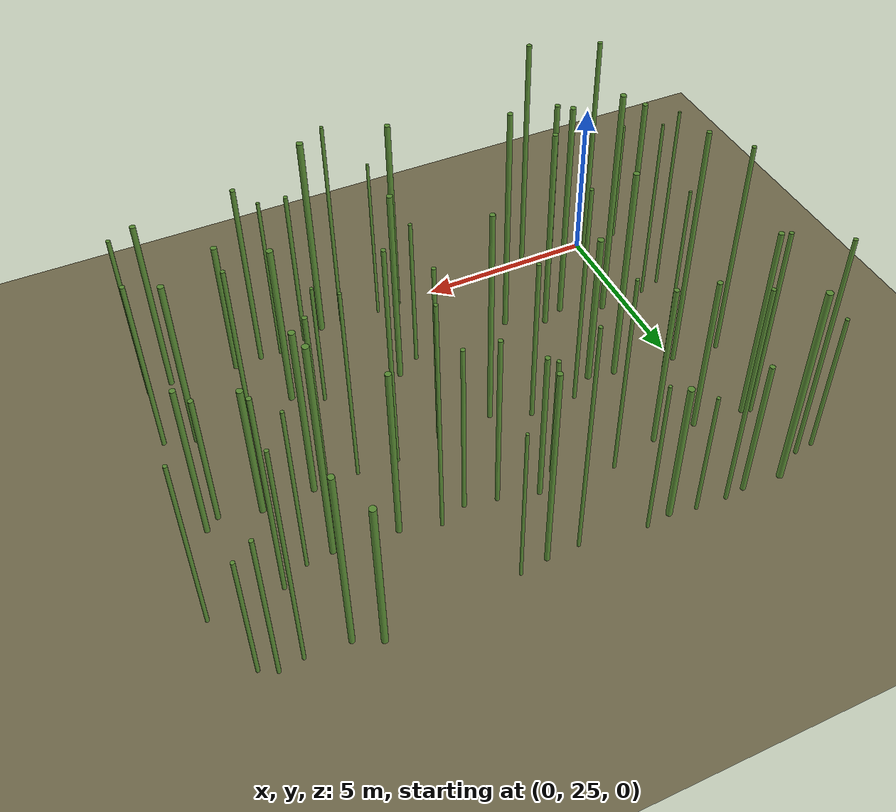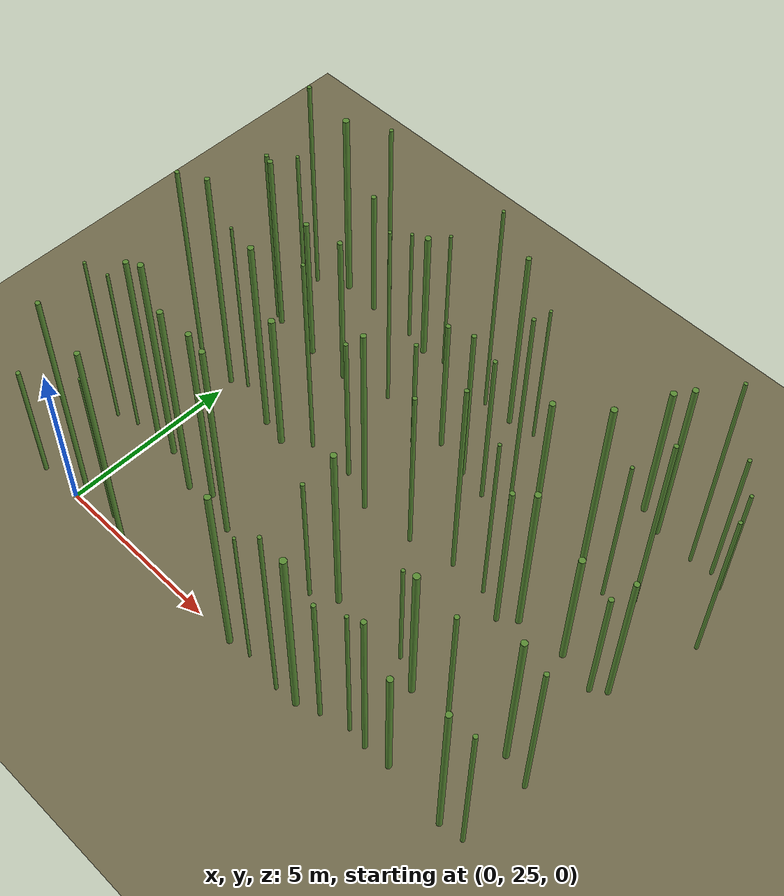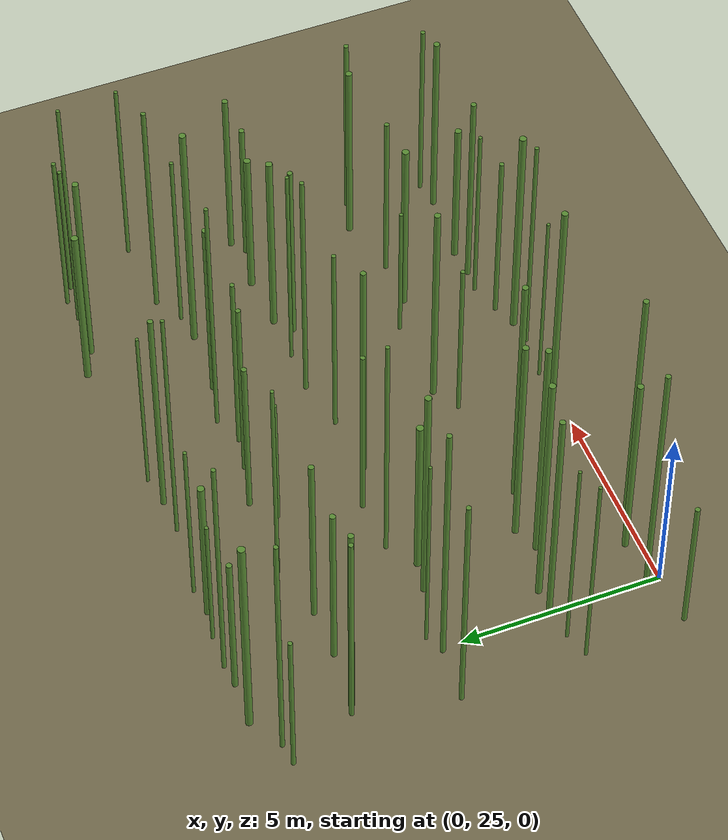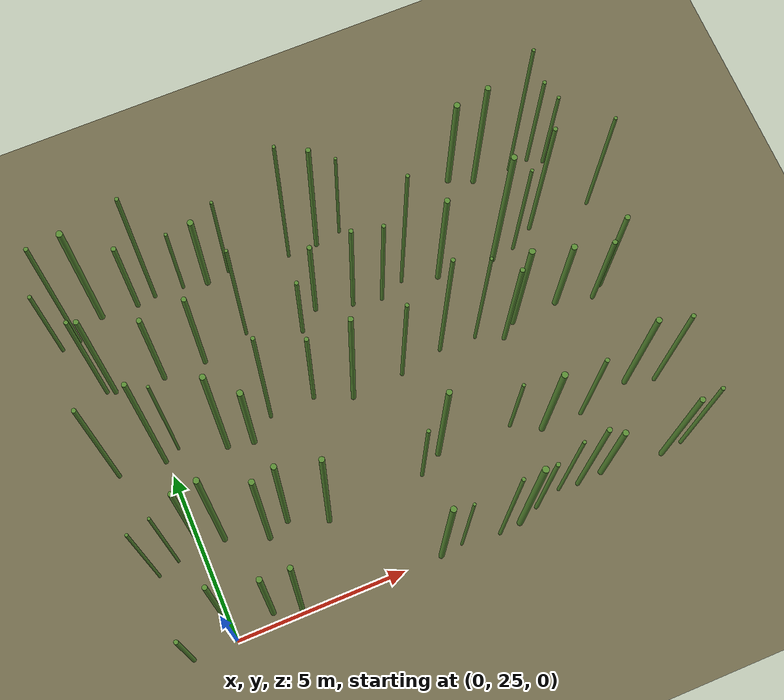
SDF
<sdf version="1.9">
 <world name="bamboo_field">
  <model name="ground_plane">
   <static>true</static>
   <link name="link">
    <collision name="collision">
     <geometry><plane><normal>0 0 1</normal><size>80.0 80.0</size></plane></geometry>
    </collision>
    <visual name="visual">
     <geometry><plane><normal>0 0 1</normal><size>80.0 80.0</size></plane></geometry>
     <material><diffuse>0.45 0.42 0.30 1</diffuse></material>
    </visual>
   </link>
  </model>
  <model name="bamboo_1713">
   <static>true</static>
   <pose>-1.2812449019505685 24.97264221818186 2.044766950367843 0 0 0</pose>
   <link name="link">
    <collision name="collision">
     <geometry>
      <cylinder><radius>0.06112649545101061</radius><length>4.089533900735686</length></cylinder>
     </geometry>
    </collision>
    <visual name="visual">
     <geometry>
      <cylinder><radius>0.06112649545101061</radius><length>4.089533900735686</length></cylinder>
     </geometry>
     <material><diffuse>0.35 0.55 0.20 1</diffuse><specular>0.1 0.1 0.1 1</specular></material>
    </visual>
   </link>
  </model>
  <model name="bamboo_1715">
   <static>true</static>
   <pose>-0.010320963659164767 25.35210948519644 3.7084872989911357 0 0 0</pose>
   <link name="link">
    <collision name="collision">
     <geometry>
      <cylinder><radius>0.0657019786310038</radius><length>7.416974597982271</length></cylinder>
     </geometry>
    </collision>
    <visual name="visual">
     <geometry>
      <cylinder><radius>0.0657019786310038</radius><length>7.416974597982271</length></cylinder>
     </geometry>
     <material><diffuse>0.35 0.55 0.20 1</diffuse><specular>0.1 0.1 0.1 1</specular></material>
    </visual>
   </link>
  </model>
  <model name="bamboo_1716">
   <static>true</static>
   <pose>1.1915557640228798 25.337657897220055 2.873891268294852 0 0 0</pose>
   <link name="link">
    <collision name="collision">
     <geometry>
      <cylinder><radius>0.07803595227579707</radius><length>5.747782536589704</length></cylinder>
     </geometry>
    </collision>
    <visual name="visual">
     <geometry>
      <cylinder><radius>0.07803595227579707</radius><length>5.747782536589704</length></cylinder>
     </geometry>
     <material><diffuse>0.35 0.55 0.20 1</diffuse><specular>0.1 0.1 0.1 1</specular></material>
    </visual>
   </link>
  </model>
  <model name="bamboo_1717">
   <static>true</static>
   <pose>1.9542342077964152 24.983717197773377 3.8194928196260394 0 0 0</pose>
   <link name="link">
    <collision name="collision">
     <geometry>
      <cylinder><radius>0.07023112840900966</radius><length>7.638985639252079</length></cylinder>
     </geometry>
    </collision>
    <visual name="visual">
     <geometry>
      <cylinder><radius>0.07023112840900966</radius><length>7.638985639252079</length></cylinder>
     </geometry>
     <material><diffuse>0.35 0.55 0.20 1</diffuse><specular>0.1 0.1 0.1 1</specular></material>
    </visual>
   </link>
  </model>
  <model name="bamboo_1719">
   <static>true</static>
   <pose>6.104229720517562 25.022968025916473 3.175828329038095 0 0 0</pose>
   <link name="link">
    <collision name="collision">
     <geometry>
      <cylinder><radius>0.08134874882573043</radius><length>6.35165665807619</length></cylinder>
     </geometry>
    </collision>
    <visual name="visual">
     <geometry>
      <cylinder><radius>0.08134874882573043</radius><length>6.35165665807619</length></cylinder>
     </geometry>
     <material><diffuse>0.35 0.55 0.20 1</diffuse><specular>0.1 0.1 0.1 1</specular></material>
    </visual>
   </link>
  </model>
  <model name="bamboo_1720">
   <static>true</static>
   <pose>6.7579610819173 25.10390975983723 2.681191955799502 0 0 0</pose>
   <link name="link">
    <collision name="collision">
     <geometry>
      <cylinder><radius>0.04062836123367798</radius><length>5.362383911599004</length></cylinder>
     </geometry>
    </collision>
    <visual name="visual">
     <geometry>
      <cylinder><radius>0.04062836123367798</radius><length>5.362383911599004</length></cylinder>
     </geometry>
     <material><diffuse>0.35 0.55 0.20 1</diffuse><specular>0.1 0.1 0.1 1</specular></material>
    </visual>
   </link>
  </model>
  <model name="bamboo_1721">
   <static>true</static>
   <pose>7.871373848366045 24.971826433078874 3.3954507286848634 0 0 0</pose>
   <link name="link">
    <collision name="collision">
     <geometry>
      <cylinder><radius>0.05053186972895278</radius><length>6.790901457369727</length></cylinder>
     </geometry>
    </collision>
    <visual name="visual">
     <geometry>
      <cylinder><radius>0.05053186972895278</radius><length>6.790901457369727</length></cylinder>
     </geometry>
     <material><diffuse>0.35 0.55 0.20 1</diffuse><specular>0.1 0.1 0.1 1</specular></material>
    </visual>
   </link>
  </model>
  <model name="bamboo_1722">
   <static>true</static>
   <pose>8.506118301652423 25.034551050024465 3.262768126823582 0 0 0</pose>
   <link name="link">
    <collision name="collision">
     <geometry>
      <cylinder><radius>0.08838618043013234</radius><length>6.525536253647164</length></cylinder>
     </geometry>
    </collision>
    <visual name="visual">
     <geometry>
      <cylinder><radius>0.08838618043013234</radius><length>6.525536253647164</length></cylinder>
     </geometry>
     <material><diffuse>0.35 0.55 0.20 1</diffuse><specular>0.1 0.1 0.1 1</specular></material>
    </visual>
   </link>
  </model>
  <model name="bamboo_1723">
   <static>true</static>
   <pose>9.11694742718933 25.26499257462695 2.583646085126065 0 0 0</pose>
   <link name="link">
    <collision name="collision">
     <geometry>
      <cylinder><radius>0.058459572756302626</radius><length>5.16729217025213</length></cylinder>
     </geometry>
    </collision>
    <visual name="visual">
     <geometry>
      <cylinder><radius>0.058459572756302626</radius><length>5.16729217025213</length></cylinder>
     </geometry>
     <material><diffuse>0.35 0.55 0.20 1</diffuse><specular>0.1 0.1 0.1 1</specular></material>
    </visual>
   </link>
  </model>
  <model name="bamboo_1724">
   <static>true</static>
   <pose>9.910108148380242 25.489919703540146 2.7032527560724677 0 0 0</pose>
   <link name="link">
    <collision name="collision">
     <geometry>
      <cylinder><radius>0.04833671526024682</radius><length>5.4065055121449355</length></cylinder>
     </geometry>
    </collision>
    <visual name="visual">
     <geometry>
      <cylinder><radius>0.04833671526024682</radius><length>5.4065055121449355</length></cylinder>
     </geometry>
     <material><diffuse>0.35 0.55 0.20 1</diffuse><specular>0.1 0.1 0.1 1</specular></material>
    </visual>
   </link>
  </model>
  <model name="bamboo_1725">
   <static>true</static>
   <pose>10.48170292662354 25.437665012124544 2.981513753379587 0 0 0</pose>
   <link name="link">
    <collision name="collision">
     <geometry>
      <cylinder><radius>0.06782197436096221</radius><length>5.963027506759174</length></cylinder>
     </geometry>
    </collision>
    <visual name="visual">
     <geometry>
      <cylinder><radius>0.06782197436096221</radius><length>5.963027506759174</length></cylinder>
     </geometry>
     <material><diffuse>0.35 0.55 0.20 1</diffuse><specular>0.1 0.1 0.1 1</specular></material>
    </visual>
   </link>
  </model>
  <model name="bamboo_1726">
   <static>true</static>
   <pose>11.222892654083285 25.487333249699894 2.1939596443735017 0 0 0</pose>
   <link name="link">
    <collision name="collision">
     <geometry>
      <cylinder><radius>0.0824834095401667</radius><length>4.387919288747003</length></cylinder>
     </geometry>
    </collision>
    <visual name="visual">
     <geometry>
      <cylinder><radius>0.0824834095401667</radius><length>4.387919288747003</length></cylinder>
     </geometry>
     <material><diffuse>0.35 0.55 0.20 1</diffuse><specular>0.1 0.1 0.1 1</specular></material>
    </visual>
   </link>
  </model>
  <model name="bamboo_1727">
   <static>true</static>
   <pose>13.047985231428903 25.31873825958789 2.8022330187271587 0 0 0</pose>
   <link name="link">
    <collision name="collision">
     <geometry>
      <cylinder><radius>0.07672303556609769</radius><length>5.604466037454317</length></cylinder>
     </geometry>
    </collision>
    <visual name="visual">
     <geometry>
      <cylinder><radius>0.07672303556609769</radius><length>5.604466037454317</length></cylinder>
     </geometry>
     <material><diffuse>0.35 0.55 0.20 1</diffuse><specular>0.1 0.1 0.1 1</specular></material>
    </visual>
   </link>
  </model>
  <model name="bamboo_1728">
   <static>true</static>
   <pose>13.703243043412806 25.412172121978735 2.7263493631821225 0 0 0</pose>
   <link name="link">
    <collision name="collision">
     <geometry>
      <cylinder><radius>0.05597017488274711</radius><length>5.452698726364245</length></cylinder>
     </geometry>
    </collision>
    <visual name="visual">
     <geometry>
      <cylinder><radius>0.05597017488274711</radius><length>5.452698726364245</length></cylinder>
     </geometry>
     <material><diffuse>0.35 0.55 0.20 1</diffuse><specular>0.1 0.1 0.1 1</specular></material>
    </visual>
   </link>
  </model>
  <model name="bamboo_1790">
   <static>true</static>
   <pose>-1.3489521709063035 27.48467832168053 3.0567947635097257 0 0 0</pose>
   <link name="link">
    <collision name="collision">
     <geometry>
      <cylinder><radius>0.04240155414926799</radius><length>6.113589527019451</length></cylinder>
     </geometry>
    </collision>
    <visual name="visual">
     <geometry>
      <cylinder><radius>0.04240155414926799</radius><length>6.113589527019451</length></cylinder>
     </geometry>
     <material><diffuse>0.35 0.55 0.20 1</diffuse><specular>0.1 0.1 0.1 1</specular></material>
    </visual>
   </link>
  </model>
  <model name="bamboo_1791">
   <static>true</static>
   <pose>-0.7227644338997237 27.67919140579215 3.008423117892159 0 0 0</pose>
   <link name="link">
    <collision name="collision">
     <geometry>
      <cylinder><radius>0.04160420088462094</radius><length>6.016846235784318</length></cylinder>
     </geometry>
    </collision>
    <visual name="visual">
     <geometry>
      <cylinder><radius>0.04160420088462094</radius><length>6.016846235784318</length></cylinder>
     </geometry>
     <material><diffuse>0.35 0.55 0.20 1</diffuse><specular>0.1 0.1 0.1 1</specular></material>
    </visual>
   </link>
  </model>
  <model name="bamboo_1792">
   <static>true</static>
   <pose>0.010959346975259132 27.808054429115245 3.4688676159911243 0 0 0</pose>
   <link name="link">
    <collision name="collision">
     <geometry>
      <cylinder><radius>0.07171869220849479</radius><length>6.9377352319822485</length></cylinder>
     </geometry>
    </collision>
    <visual name="visual">
     <geometry>
      <cylinder><radius>0.07171869220849479</radius><length>6.9377352319822485</length></cylinder>
     </geometry>
     <material><diffuse>0.35 0.55 0.20 1</diffuse><specular>0.1 0.1 0.1 1</specular></material>
    </visual>
   </link>
  </model>
  <model name="bamboo_1793">
   <static>true</static>
   <pose>0.6888910459992598 27.771842970053065 3.6925986834091833 0 0 0</pose>
   <link name="link">
    <collision name="collision">
     <geometry>
      <cylinder><radius>0.07992954884227378</radius><length>7.385197366818367</length></cylinder>
     </geometry>
    </collision>
    <visual name="visual">
     <geometry>
      <cylinder><radius>0.07992954884227378</radius><length>7.385197366818367</length></cylinder>
     </geometry>
     <material><diffuse>0.35 0.55 0.20 1</diffuse><specular>0.1 0.1 0.1 1</specular></material>
    </visual>
   </link>
  </model>
  <model name="bamboo_1794">
   <static>true</static>
   <pose>1.8731551704132192 27.319900591756273 3.5342305702560117 0 0 0</pose>
   <link name="link">
    <collision name="collision">
     <geometry>
      <cylinder><radius>0.07759536745886636</radius><length>7.0684611405120235</length></cylinder>
     </geometry>
    </collision>
    <visual name="visual">
     <geometry>
      <cylinder><radius>0.07759536745886636</radius><length>7.0684611405120235</length></cylinder>
     </geometry>
     <material><diffuse>0.35 0.55 0.20 1</diffuse><specular>0.1 0.1 0.1 1</specular></material>
    </visual>
   </link>
  </model>
  <model name="bamboo_1795">
   <static>true</static>
   <pose>2.503125946035982 27.57958305767207 3.300887395894966 0 0 0</pose>
   <link name="link">
    <collision name="collision">
     <geometry>
      <cylinder><radius>0.07694682946510811</radius><length>6.601774791789932</length></cylinder>
     </geometry>
    </collision>
    <visual name="visual">
     <geometry>
      <cylinder><radius>0.07694682946510811</radius><length>6.601774791789932</length></cylinder>
     </geometry>
     <material><diffuse>0.35 0.55 0.20 1</diffuse><specular>0.1 0.1 0.1 1</specular></material>
    </visual>
   </link>
  </model>
  <model name="bamboo_1796">
   <static>true</static>
   <pose>3.5906098026918256 27.141133623319924 3.640417053528185 0 0 0</pose>
   <link name="link">
    <collision name="collision">
     <geometry>
      <cylinder><radius>0.07462930833528139</radius><length>7.28083410705637</length></cylinder>
     </geometry>
    </collision>
    <visual name="visual">
     <geometry>
      <cylinder><radius>0.07462930833528139</radius><length>7.28083410705637</length></cylinder>
     </geometry>
     <material><diffuse>0.35 0.55 0.20 1</diffuse><specular>0.1 0.1 0.1 1</specular></material>
    </visual>
   </link>
  </model>
  <model name="bamboo_1797">
   <static>true</static>
   <pose>6.511384770044317 27.354728648498927 2.4457799730357 0 0 0</pose>
   <link name="link">
    <collision name="collision">
     <geometry><cylinder><radius>0.05294264750762828</radius><length>4.8915599460714</length></cylinder></geometry>
    </collision>
    <visual name="visual">
     <geometry><cylinder><radius>0.05294264750762828</radius><length>4.8915599460714</length></cylinder></geometry>
     <material><diffuse>0.35 0.55 0.20 1</diffuse><specular>0.1 0.1 0.1 1</specular></material>
    </visual>
   </link>
  </model>
  <model name="bamboo_1798">
   <static>true</static>
   <pose>7.170560997116723 27.742313371493033 3.148876829823204 0 0 0</pose>
   <link name="link">
    <collision name="collision">
     <geometry>
      <cylinder><radius>0.07849639140871344</radius><length>6.297753659646408</length></cylinder>
     </geometry>
    </collision>
    <visual name="visual">
     <geometry>
      <cylinder><radius>0.07849639140871344</radius><length>6.297753659646408</length></cylinder>
     </geometry>
     <material><diffuse>0.35 0.55 0.20 1</diffuse><specular>0.1 0.1 0.1 1</specular></material>
    </visual>
   </link>
  </model>
  <model name="bamboo_1799">
   <static>true</static>
   <pose>9.399748356970791 27.71738397563248 2.0524489810082622 0 0 0</pose>
   <link name="link">
    <collision name="collision">
     <geometry>
      <cylinder><radius>0.04907933604005593</radius><length>4.1048979620165245</length></cylinder>
     </geometry>
    </collision>
    <visual name="visual">
     <geometry>
      <cylinder><radius>0.04907933604005593</radius><length>4.1048979620165245</length></cylinder>
     </geometry>
     <material><diffuse>0.35 0.55 0.20 1</diffuse><specular>0.1 0.1 0.1 1</specular></material>
    </visual>
   </link>
  </model>
  <model name="bamboo_1800">
   <static>true</static>
   <pose>10.210923990488512 27.287167851970334 2.6549220959925064 0 0 0</pose>
   <link name="link">
    <collision name="collision">
     <geometry>
      <cylinder><radius>0.08773302974897133</radius><length>5.309844191985013</length></cylinder>
     </geometry>
    </collision>
    <visual name="visual">
     <geometry>
      <cylinder><radius>0.08773302974897133</radius><length>5.309844191985013</length></cylinder>
     </geometry>
     <material><diffuse>0.35 0.55 0.20 1</diffuse><specular>0.1 0.1 0.1 1</specular></material>
    </visual>
   </link>
  </model>
  <model name="bamboo_1801">
   <static>true</static>
   <pose>11.429123104056202 27.27816021983343 2.5421558802273694 0 0 0</pose>
   <link name="link">
    <collision name="collision">
     <geometry>
      <cylinder><radius>0.06121418192647532</radius><length>5.084311760454739</length></cylinder>
     </geometry>
    </collision>
    <visual name="visual">
     <geometry>
      <cylinder><radius>0.06121418192647532</radius><length>5.084311760454739</length></cylinder>
     </geometry>
     <material><diffuse>0.35 0.55 0.20 1</diffuse><specular>0.1 0.1 0.1 1</specular></material>
    </visual>
   </link>
  </model>
  <model name="bamboo_1802">
   <static>true</static>
   <pose>12.986168000182229 27.646854818488013 2.750227883836983 0 0 0</pose>
   <link name="link">
    <collision name="collision">
     <geometry>
      <cylinder><radius>0.08170786214918407</radius><length>5.500455767673966</length></cylinder>
     </geometry>
    </collision>
    <visual name="visual">
     <geometry>
      <cylinder><radius>0.08170786214918407</radius><length>5.500455767673966</length></cylinder>
     </geometry>
     <material><diffuse>0.35 0.55 0.20 1</diffuse><specular>0.1 0.1 0.1 1</specular></material>
    </visual>
   </link>
  </model>
  <model name="bamboo_1803">
   <static>true</static>
   <pose>13.815308969666152 27.392448575038713 2.798356401900019 0 0 0</pose>
   <link name="link">
    <collision name="collision">
     <geometry>
      <cylinder><radius>0.0623406193548988</radius><length>5.596712803800038</length></cylinder>
     </geometry>
    </collision>
    <visual name="visual">
     <geometry>
      <cylinder><radius>0.0623406193548988</radius><length>5.596712803800038</length></cylinder>
     </geometry>
     <material><diffuse>0.35 0.55 0.20 1</diffuse><specular>0.1 0.1 0.1 1</specular></material>
    </visual>
   </link>
  </model>
  <model name="bamboo_1852">
   <static>true</static>
   <pose>-1.4236925680769439 30.601678442894606 3.488619551656617 0 0 0</pose>
   <link name="link">
    <collision name="collision">
     <geometry>
      <cylinder><radius>0.05968725499447025</radius><length>6.977239103313234</length></cylinder>
     </geometry>
    </collision>
    <visual name="visual">
     <geometry>
      <cylinder><radius>0.05968725499447025</radius><length>6.977239103313234</length></cylinder>
     </geometry>
     <material><diffuse>0.35 0.55 0.20 1</diffuse><specular>0.1 0.1 0.1 1</specular></material>
    </visual>
   </link>
  </model>
  <model name="bamboo_1853">
   <static>true</static>
   <pose>-0.056700002124779214 30.48966584134691 3.8803940027757395 0 0 0</pose>
   <link name="link">
    <collision name="collision">
     <geometry>
      <cylinder><radius>0.06613826954263308</radius><length>7.760788005551479</length></cylinder>
     </geometry>
    </collision>
    <visual name="visual">
     <geometry>
      <cylinder><radius>0.06613826954263308</radius><length>7.760788005551479</length></cylinder>
     </geometry>
     <material><diffuse>0.35 0.55 0.20 1</diffuse><specular>0.1 0.1 0.1 1</specular></material>
    </visual>
   </link>
  </model>
  <model name="bamboo_1854">
   <static>true</static>
   <pose>0.4020409329805253 30.712147827550723 3.133859994720484 0 0 0</pose>
   <link name="link">
    <collision name="collision">
     <geometry>
      <cylinder><radius>0.04128202856184524</radius><length>6.267719989440968</length></cylinder>
     </geometry>
    </collision>
    <visual name="visual">
     <geometry>
      <cylinder><radius>0.04128202856184524</radius><length>6.267719989440968</length></cylinder>
     </geometry>
     <material><diffuse>0.35 0.55 0.20 1</diffuse><specular>0.1 0.1 0.1 1</specular></material>
    </visual>
   </link>
  </model>
  <model name="bamboo_1855">
   <static>true</static>
   <pose>1.719262575260203 30.227442954739423 3.4581147351357813 0 0 0</pose>
   <link name="link">
    <collision name="collision">
     <geometry>
      <cylinder><radius>0.08009476230605489</radius><length>6.9162294702715625</length></cylinder>
     </geometry>
    </collision>
    <visual name="visual">
     <geometry>
      <cylinder><radius>0.08009476230605489</radius><length>6.9162294702715625</length></cylinder>
     </geometry>
     <material><diffuse>0.35 0.55 0.20 1</diffuse><specular>0.1 0.1 0.1 1</specular></material>
    </visual>
   </link>
  </model>
  <model name="bamboo_1856">
   <static>true</static>
   <pose>2.464213782437099 30.08344237589001 2.4974021654819323 0 0 0</pose>
   <link name="link">
    <collision name="collision">
     <geometry>
      <cylinder><radius>0.08867897814720443</radius><length>4.994804330963865</length></cylinder>
     </geometry>
    </collision>
    <visual name="visual">
     <geometry>
      <cylinder><radius>0.08867897814720443</radius><length>4.994804330963865</length></cylinder>
     </geometry>
     <material><diffuse>0.35 0.55 0.20 1</diffuse><specular>0.1 0.1 0.1 1</specular></material>
    </visual>
   </link>
  </model>
  <model name="bamboo_1857">
   <static>true</static>
   <pose>3.1818574317319173 30.58954922995089 3.587282049068691 0 0 0</pose>
   <link name="link">
    <collision name="collision">
     <geometry>
      <cylinder><radius>0.053158684882749295</radius><length>7.174564098137382</length></cylinder>
     </geometry>
    </collision>
    <visual name="visual">
     <geometry>
      <cylinder><radius>0.053158684882749295</radius><length>7.174564098137382</length></cylinder>
     </geometry>
     <material><diffuse>0.35 0.55 0.20 1</diffuse><specular>0.1 0.1 0.1 1</specular></material>
    </visual>
   </link>
  </model>
  <model name="bamboo_1858">
   <static>true</static>
   <pose>4.5250304221793565 30.641286888968988 2.697078284337643 0 0 0</pose>
   <link name="link">
    <collision name="collision">
     <geometry>
      <cylinder><radius>0.06006604364265469</radius><length>5.394156568675286</length></cylinder>
     </geometry>
    </collision>
    <visual name="visual">
     <geometry>
      <cylinder><radius>0.06006604364265469</radius><length>5.394156568675286</length></cylinder>
     </geometry>
     <material><diffuse>0.35 0.55 0.20 1</diffuse><specular>0.1 0.1 0.1 1</specular></material>
    </visual>
   </link>
  </model>
  <model name="bamboo_1859">
   <static>true</static>
   <pose>5.582225304000331 30.20928264338742 3.4797186524444172 0 0 0</pose>
   <link name="link">
    <collision name="collision">
     <geometry>
      <cylinder><radius>0.07082013634526534</radius><length>6.9594373048888345</length></cylinder>
     </geometry>
    </collision>
    <visual name="visual">
     <geometry>
      <cylinder><radius>0.07082013634526534</radius><length>6.9594373048888345</length></cylinder>
     </geometry>
     <material><diffuse>0.35 0.55 0.20 1</diffuse><specular>0.1 0.1 0.1 1</specular></material>
    </visual>
   </link>
  </model>
  <model name="bamboo_1860">
   <static>true</static>
   <pose>7.1474443621859205 30.317870465853993 2.994385386101529 0 0 0</pose>
   <link name="link">
    <collision name="collision">
     <geometry>
      <cylinder><radius>0.05564621725000431</radius><length>5.988770772203058</length></cylinder>
     </geometry>
    </collision>
    <visual name="visual">
     <geometry>
      <cylinder><radius>0.05564621725000431</radius><length>5.988770772203058</length></cylinder>
     </geometry>
     <material><diffuse>0.35 0.55 0.20 1</diffuse><specular>0.1 0.1 0.1 1</specular></material>
    </visual>
   </link>
  </model>
  <model name="bamboo_1861">
   <static>true</static>
   <pose>8.450028178578785 30.578322589361463 3.611794999804632 0 0 0</pose>
   <link name="link">
    <collision name="collision">
     <geometry>
      <cylinder><radius>0.057529695234075647</radius><length>7.223589999609264</length></cylinder>
     </geometry>
    </collision>
    <visual name="visual">
     <geometry>
      <cylinder><radius>0.057529695234075647</radius><length>7.223589999609264</length></cylinder>
     </geometry>
     <material><diffuse>0.35 0.55 0.20 1</diffuse><specular>0.1 0.1 0.1 1</specular></material>
    </visual>
   </link>
  </model>
  <model name="bamboo_1862">
   <static>true</static>
   <pose>9.542886579286302 30.540142807612835 3.163693671085351 0 0 0</pose>
   <link name="link">
    <collision name="collision">
     <geometry>
      <cylinder><radius>0.04557403012729799</radius><length>6.327387342170702</length></cylinder>
     </geometry>
    </collision>
    <visual name="visual">
     <geometry>
      <cylinder><radius>0.04557403012729799</radius><length>6.327387342170702</length></cylinder>
     </geometry>
     <material><diffuse>0.35 0.55 0.20 1</diffuse><specular>0.1 0.1 0.1 1</specular></material>
    </visual>
   </link>
  </model>
  <model name="bamboo_1863">
   <static>true</static>
   <pose>10.317844728014261 30.189016725488564 2.795942464746102 0 0 0</pose>
   <link name="link">
    <collision name="collision">
     <geometry>
      <cylinder><radius>0.0669127179599956</radius><length>5.591884929492204</length></cylinder>
     </geometry>
    </collision>
    <visual name="visual">
     <geometry>
      <cylinder><radius>0.0669127179599956</radius><length>5.591884929492204</length></cylinder>
     </geometry>
     <material><diffuse>0.35 0.55 0.20 1</diffuse><specular>0.1 0.1 0.1 1</specular></material>
    </visual>
   </link>
  </model>
  <model name="bamboo_1864">
   <static>true</static>
   <pose>10.75147538620531 30.55110466720041 2.809274179521334 0 0 0</pose>
   <link name="link">
    <collision name="collision">
     <geometry>
      <cylinder><radius>0.08384665253132215</radius><length>5.618548359042668</length></cylinder>
     </geometry>
    </collision>
    <visual name="visual">
     <geometry>
      <cylinder><radius>0.08384665253132215</radius><length>5.618548359042668</length></cylinder>
     </geometry>
     <material><diffuse>0.35 0.55 0.20 1</diffuse><specular>0.1 0.1 0.1 1</specular></material>
    </visual>
   </link>
  </model>
  <model name="bamboo_1865">
   <static>true</static>
   <pose>12.1494999262637 30.62018415702317 2.2072520530970317 0 0 0</pose>
   <link name="link">
    <collision name="collision">
     <geometry>
      <cylinder><radius>0.0860629162882418</radius><length>4.414504106194063</length></cylinder>
     </geometry>
    </collision>
    <visual name="visual">
     <geometry>
      <cylinder><radius>0.0860629162882418</radius><length>4.414504106194063</length></cylinder>
     </geometry>
     <material><diffuse>0.35 0.55 0.20 1</diffuse><specular>0.1 0.1 0.1 1</specular></material>
    </visual>
   </link>
  </model>
  <model name="bamboo_1866">
   <static>true</static>
   <pose>13.234835120295404 30.359758235231148 2.1644232023333947 0 0 0</pose>
   <link name="link">
    <collision name="collision">
     <geometry>
      <cylinder><radius>0.06850533909005868</radius><length>4.328846404666789</length></cylinder>
     </geometry>
    </collision>
    <visual name="visual">
     <geometry>
      <cylinder><radius>0.06850533909005868</radius><length>4.328846404666789</length></cylinder>
     </geometry>
     <material><diffuse>0.35 0.55 0.20 1</diffuse><specular>0.1 0.1 0.1 1</specular></material>
    </visual>
   </link>
  </model>
  <model name="bamboo_1867">
   <static>true</static>
   <pose>13.597682082643866 30.633256572263505 2.5475765917652726 0 0 0</pose>
   <link name="link">
    <collision name="collision">
     <geometry>
      <cylinder><radius>0.07337606638397175</radius><length>5.095153183530545</length></cylinder>
     </geometry>
    </collision>
    <visual name="visual">
     <geometry>
      <cylinder><radius>0.07337606638397175</radius><length>5.095153183530545</length></cylinder>
     </geometry>
     <material><diffuse>0.35 0.55 0.20 1</diffuse><specular>0.1 0.1 0.1 1</specular></material>
    </visual>
   </link>
  </model>
  <model name="bamboo_1925">
   <static>true</static>
   <pose>-0.9113957805042361 33.065283124342166 3.125423313057684 0 0 0</pose>
   <link name="link">
    <collision name="collision">
     <geometry>
      <cylinder><radius>0.05906066946812755</radius><length>6.250846626115368</length></cylinder>
     </geometry>
    </collision>
    <visual name="visual">
     <geometry>
      <cylinder><radius>0.05906066946812755</radius><length>6.250846626115368</length></cylinder>
     </geometry>
     <material><diffuse>0.35 0.55 0.20 1</diffuse><specular>0.1 0.1 0.1 1</specular></material>
    </visual>
   </link>
  </model>
  <model name="bamboo_1926">
   <static>true</static>
   <pose>-0.681386380513592 32.98140016128031 3.127277516507842 0 0 0</pose>
   <link name="link">
    <collision name="collision">
     <geometry>
      <cylinder><radius>0.07141432964622796</radius><length>6.254555033015684</length></cylinder>
     </geometry>
    </collision>
    <visual name="visual">
     <geometry>
      <cylinder><radius>0.07141432964622796</radius><length>6.254555033015684</length></cylinder>
     </geometry>
     <material><diffuse>0.35 0.55 0.20 1</diffuse><specular>0.1 0.1 0.1 1</specular></material>
    </visual>
   </link>
  </model>
  <model name="bamboo_1927">
   <static>true</static>
   <pose>0.7624257576821383 32.84196616684084 2.5649369014145433 0 0 0</pose>
   <link name="link">
    <collision name="collision">
     <geometry>
      <cylinder><radius>0.07223950765507473</radius><length>5.129873802829087</length></cylinder>
     </geometry>
    </collision>
    <visual name="visual">
     <geometry>
      <cylinder><radius>0.07223950765507473</radius><length>5.129873802829087</length></cylinder>
     </geometry>
     <material><diffuse>0.35 0.55 0.20 1</diffuse><specular>0.1 0.1 0.1 1</specular></material>
    </visual>
   </link>
  </model>
  <model name="bamboo_1928">
   <static>true</static>
   <pose>2.0220033923893723 32.845685317847646 2.6902925071139796 0 0 0</pose>
   <link name="link">
    <collision name="collision">
     <geometry>
      <cylinder><radius>0.07063042508439805</radius><length>5.380585014227959</length></cylinder>
     </geometry>
    </collision>
    <visual name="visual">
     <geometry>
      <cylinder><radius>0.07063042508439805</radius><length>5.380585014227959</length></cylinder>
     </geometry>
     <material><diffuse>0.35 0.55 0.20 1</diffuse><specular>0.1 0.1 0.1 1</specular></material>
    </visual>
   </link>
  </model>
  <model name="bamboo_1929">
   <static>true</static>
   <pose>3.434818848032072 33.20435532555725 3.2741864283528708 0 0 0</pose>
   <link name="link">
    <collision name="collision">
     <geometry>
      <cylinder><radius>0.04722037005680185</radius><length>6.5483728567057415</length></cylinder>
     </geometry>
    </collision>
    <visual name="visual">
     <geometry>
      <cylinder><radius>0.04722037005680185</radius><length>6.5483728567057415</length></cylinder>
     </geometry>
     <material><diffuse>0.35 0.55 0.20 1</diffuse><specular>0.1 0.1 0.1 1</specular></material>
    </visual>
   </link>
  </model>
  <model name="bamboo_1930">
   <static>true</static>
   <pose>4.976243163742862 32.627984963050984 2.041874251242527 0 0 0</pose>
   <link name="link">
    <collision name="collision">
     <geometry>
      <cylinder><radius>0.05840390478819816</radius><length>4.083748502485054</length></cylinder>
     </geometry>
    </collision>
    <visual name="visual">
     <geometry>
      <cylinder><radius>0.05840390478819816</radius><length>4.083748502485054</length></cylinder>
     </geometry>
     <material><diffuse>0.35 0.55 0.20 1</diffuse><specular>0.1 0.1 0.1 1</specular></material>
    </visual>
   </link>
  </model>
  <model name="bamboo_1931">
   <static>true</static>
   <pose>5.5779623207067255 33.11529106473646 2.453971221856614 0 0 0</pose>
   <link name="link">
    <collision name="collision">
     <geometry>
      <cylinder><radius>0.0670749262912883</radius><length>4.907942443713228</length></cylinder>
     </geometry>
    </collision>
    <visual name="visual">
     <geometry>
      <cylinder><radius>0.0670749262912883</radius><length>4.907942443713228</length></cylinder>
     </geometry>
     <material><diffuse>0.35 0.55 0.20 1</diffuse><specular>0.1 0.1 0.1 1</specular></material>
    </visual>
   </link>
  </model>
  <model name="bamboo_1932">
   <static>true</static>
   <pose>6.650991709286017 32.83792134296701 2.835451252171122 0 0 0</pose>
   <link name="link">
    <collision name="collision">
     <geometry>
      <cylinder><radius>0.06105703275040603</radius><length>5.670902504342244</length></cylinder>
     </geometry>
    </collision>
    <visual name="visual">
     <geometry>
      <cylinder><radius>0.06105703275040603</radius><length>5.670902504342244</length></cylinder>
     </geometry>
     <material><diffuse>0.35 0.55 0.20 1</diffuse><specular>0.1 0.1 0.1 1</specular></material>
    </visual>
   </link>
  </model>
  <model name="bamboo_1933">
   <static>true</static>
   <pose>7.49926974480562 32.6713368773556 2.7977661212252776 0 0 0</pose>
   <link name="link">
    <collision name="collision">
     <geometry>
      <cylinder><radius>0.056300549233471386</radius><length>5.595532242450555</length></cylinder>
     </geometry>
    </collision>
    <visual name="visual">
     <geometry>
      <cylinder><radius>0.056300549233471386</radius><length>5.595532242450555</length></cylinder>
     </geometry>
     <material><diffuse>0.35 0.55 0.20 1</diffuse><specular>0.1 0.1 0.1 1</specular></material>
    </visual>
   </link>
  </model>
  <model name="bamboo_1934">
   <static>true</static>
   <pose>8.24126625634669 32.96040969702206 3.7472122718290506 0 0 0</pose>
   <link name="link">
    <collision name="collision">
     <geometry>
      <cylinder><radius>0.04973009688705392</radius><length>7.494424543658101</length></cylinder>
     </geometry>
    </collision>
    <visual name="visual">
     <geometry>
      <cylinder><radius>0.04973009688705392</radius><length>7.494424543658101</length></cylinder>
     </geometry>
     <material><diffuse>0.35 0.55 0.20 1</diffuse><specular>0.1 0.1 0.1 1</specular></material>
    </visual>
   </link>
  </model>
  <model name="bamboo_1935">
   <static>true</static>
   <pose>9.290679837176278 32.67665589901849 2.816416179758558 0 0 0</pose>
   <link name="link">
    <collision name="collision">
     <geometry>
      <cylinder><radius>0.07819882899227676</radius><length>5.632832359517116</length></cylinder>
     </geometry>
    </collision>
    <visual name="visual">
     <geometry>
      <cylinder><radius>0.07819882899227676</radius><length>5.632832359517116</length></cylinder>
     </geometry>
     <material><diffuse>0.35 0.55 0.20 1</diffuse><specular>0.1 0.1 0.1 1</specular></material>
    </visual>
   </link>
  </model>
  <model name="bamboo_1936">
   <static>true</static>
   <pose>10.993824638902275 32.56281631714601 3.5491553227619965 0 0 0</pose>
   <link name="link">
    <collision name="collision">
     <geometry>
      <cylinder><radius>0.08164439475377383</radius><length>7.098310645523993</length></cylinder>
     </geometry>
    </collision>
    <visual name="visual">
     <geometry>
      <cylinder><radius>0.08164439475377383</radius><length>7.098310645523993</length></cylinder>
     </geometry>
     <material><diffuse>0.35 0.55 0.20 1</diffuse><specular>0.1 0.1 0.1 1</specular></material>
    </visual>
   </link>
  </model>
  <model name="bamboo_1937">
   <static>true</static>
   <pose>11.706429232006693 32.65341698444871 2.768581002013713 0 0 0</pose>
   <link name="link">
    <collision name="collision">
     <geometry>
      <cylinder><radius>0.04783596733944545</radius><length>5.537162004027426</length></cylinder>
     </geometry>
    </collision>
    <visual name="visual">
     <geometry>
      <cylinder><radius>0.04783596733944545</radius><length>5.537162004027426</length></cylinder>
     </geometry>
     <material><diffuse>0.35 0.55 0.20 1</diffuse><specular>0.1 0.1 0.1 1</specular></material>
    </visual>
   </link>
  </model>
  <model name="bamboo_1938">
   <static>true</static>
   <pose>12.412694755260285 33.049376510869855 3.333987074678254 0 0 0</pose>
   <link name="link">
    <collision name="collision">
     <geometry>
      <cylinder><radius>0.05929853356159959</radius><length>6.667974149356508</length></cylinder>
     </geometry>
    </collision>
    <visual name="visual">
     <geometry>
      <cylinder><radius>0.05929853356159959</radius><length>6.667974149356508</length></cylinder>
     </geometry>
     <material><diffuse>0.35 0.55 0.20 1</diffuse><specular>0.1 0.1 0.1 1</specular></material>
    </visual>
   </link>
  </model>
  <model name="bamboo_1939">
   <static>true</static>
   <pose>14.335472797823856 33.13481739048663 2.8225794630719823 0 0 0</pose>
   <link name="link">
    <collision name="collision">
     <geometry>
      <cylinder><radius>0.04989048747371258</radius><length>5.6451589261439645</length></cylinder>
     </geometry>
    </collision>
    <visual name="visual">
     <geometry>
      <cylinder><radius>0.04989048747371258</radius><length>5.6451589261439645</length></cylinder>
     </geometry>
     <material><diffuse>0.35 0.55 0.20 1</diffuse><specular>0.1 0.1 0.1 1</specular></material>
    </visual>
   </link>
  </model>
  <model name="bamboo_1990">
   <static>true</static>
   <pose>-1.673247249322031 34.76111439036476 2.286166718062497 0 0 0</pose>
   <link name="link">
    <collision name="collision">
     <geometry>
      <cylinder><radius>0.05381051827665702</radius><length>4.572333436124994</length></cylinder>
     </geometry>
    </collision>
    <visual name="visual">
     <geometry>
      <cylinder><radius>0.05381051827665702</radius><length>4.572333436124994</length></cylinder>
     </geometry>
     <material><diffuse>0.35 0.55 0.20 1</diffuse><specular>0.1 0.1 0.1 1</specular></material>
    </visual>
   </link>
  </model>
  <model name="bamboo_1991">
   <static>true</static>
   <pose>-1.1302667658629728 34.82208365082606 3.6496735605694726 0 0 0</pose>
   <link name="link">
    <collision name="collision">
     <geometry>
      <cylinder><radius>0.056360718889597344</radius><length>7.299347121138945</length></cylinder>
     </geometry>
    </collision>
    <visual name="visual">
     <geometry>
      <cylinder><radius>0.056360718889597344</radius><length>7.299347121138945</length></cylinder>
     </geometry>
     <material><diffuse>0.35 0.55 0.20 1</diffuse><specular>0.1 0.1 0.1 1</specular></material>
    </visual>
   </link>
  </model>
  <model name="bamboo_1992">
   <static>true</static>
   <pose>-0.28353380649270726 35.29669502272271 3.209542049217425 0 0 0</pose>
   <link name="link">
    <collision name="collision">
     <geometry>
      <cylinder><radius>0.08926422846100042</radius><length>6.41908409843485</length></cylinder>
     </geometry>
    </collision>
    <visual name="visual">
     <geometry>
      <cylinder><radius>0.08926422846100042</radius><length>6.41908409843485</length></cylinder>
     </geometry>
     <material><diffuse>0.35 0.55 0.20 1</diffuse><specular>0.1 0.1 0.1 1</specular></material>
    </visual>
   </link>
  </model>
  <model name="bamboo_1993">
   <static>true</static>
   <pose>0.812779649786565 35.234645930011425 2.240724836224609 0 0 0</pose>
   <link name="link">
    <collision name="collision">
     <geometry>
      <cylinder><radius>0.06987935938130371</radius><length>4.481449672449218</length></cylinder>
     </geometry>
    </collision>
    <visual name="visual">
     <geometry>
      <cylinder><radius>0.06987935938130371</radius><length>4.481449672449218</length></cylinder>
     </geometry>
     <material><diffuse>0.35 0.55 0.20 1</diffuse><specular>0.1 0.1 0.1 1</specular></material>
    </visual>
   </link>
  </model>
  <model name="bamboo_1994">
   <static>true</static>
   <pose>1.3734568679068053 35.29281008756258 3.5814186092616453 0 0 0</pose>
   <link name="link">
    <collision name="collision">
     <geometry>
      <cylinder><radius>0.05412281291493269</radius><length>7.162837218523291</length></cylinder>
     </geometry>
    </collision>
    <visual name="visual">
     <geometry>
      <cylinder><radius>0.05412281291493269</radius><length>7.162837218523291</length></cylinder>
     </geometry>
     <material><diffuse>0.35 0.55 0.20 1</diffuse><specular>0.1 0.1 0.1 1</specular></material>
    </visual>
   </link>
  </model>
  <model name="bamboo_1995">
   <static>true</static>
   <pose>2.2378730222289103 35.253461053864925 2.0505673889640157 0 0 0</pose>
   <link name="link">
    <collision name="collision">
     <geometry>
      <cylinder><radius>0.04720298003260172</radius><length>4.101134777928031</length></cylinder>
     </geometry>
    </collision>
    <visual name="visual">
     <geometry>
      <cylinder><radius>0.04720298003260172</radius><length>4.101134777928031</length></cylinder>
     </geometry>
     <material><diffuse>0.35 0.55 0.20 1</diffuse><specular>0.1 0.1 0.1 1</specular></material>
    </visual>
   </link>
  </model>
  <model name="bamboo_1996">
   <static>true</static>
   <pose>2.951335324049982 35.10848456696514 2.295229486326651 0 0 0</pose>
   <link name="link">
    <collision name="collision">
     <geometry>
      <cylinder><radius>0.08549033120013019</radius><length>4.590458972653302</length></cylinder>
     </geometry>
    </collision>
    <visual name="visual">
     <geometry>
      <cylinder><radius>0.08549033120013019</radius><length>4.590458972653302</length></cylinder>
     </geometry>
     <material><diffuse>0.35 0.55 0.20 1</diffuse><specular>0.1 0.1 0.1 1</specular></material>
    </visual>
   </link>
  </model>
  <model name="bamboo_1997">
   <static>true</static>
   <pose>3.6439150557579167 35.21420722541079 2.547104112147439 0 0 0</pose>
   <link name="link">
    <collision name="collision">
     <geometry>
      <cylinder><radius>0.045387243604996415</radius><length>5.094208224294878</length></cylinder>
     </geometry>
    </collision>
    <visual name="visual">
     <geometry>
      <cylinder><radius>0.045387243604996415</radius><length>5.094208224294878</length></cylinder>
     </geometry>
     <material><diffuse>0.35 0.55 0.20 1</diffuse><specular>0.1 0.1 0.1 1</specular></material>
    </visual>
   </link>
  </model>
  <model name="bamboo_1998">
   <static>true</static>
   <pose>5.470300693417878 34.97797490947296 3.7354753960153166 0 0 0</pose>
   <link name="link">
    <collision name="collision">
     <geometry>
      <cylinder><radius>0.046195747126796645</radius><length>7.470950792030633</length></cylinder>
     </geometry>
    </collision>
    <visual name="visual">
     <geometry>
      <cylinder><radius>0.046195747126796645</radius><length>7.470950792030633</length></cylinder>
     </geometry>
     <material><diffuse>0.35 0.55 0.20 1</diffuse><specular>0.1 0.1 0.1 1</specular></material>
    </visual>
   </link>
  </model>
  <model name="bamboo_1999">
   <static>true</static>
   <pose>6.362035422569824 34.99667590197801 3.257780677590662 0 0 0</pose>
   <link name="link">
    <collision name="collision">
     <geometry>
      <cylinder><radius>0.06750635595078217</radius><length>6.515561355181324</length></cylinder>
     </geometry>
    </collision>
    <visual name="visual">
     <geometry>
      <cylinder><radius>0.06750635595078217</radius><length>6.515561355181324</length></cylinder>
     </geometry>
     <material><diffuse>0.35 0.55 0.20 1</diffuse><specular>0.1 0.1 0.1 1</specular></material>
    </visual>
   </link>
  </model>
  <model name="bamboo_2000">
   <static>true</static>
   <pose>7.136181608743217 35.11777025326197 2.5658178377749645 0 0 0</pose>
   <link name="link">
    <collision name="collision">
     <geometry>
      <cylinder><radius>0.04172669948772377</radius><length>5.131635675549929</length></cylinder>
     </geometry>
    </collision>
    <visual name="visual">
     <geometry>
      <cylinder><radius>0.04172669948772377</radius><length>5.131635675549929</length></cylinder>
     </geometry>
     <material><diffuse>0.35 0.55 0.20 1</diffuse><specular>0.1 0.1 0.1 1</specular></material>
    </visual>
   </link>
  </model>
  <model name="bamboo_2001">
   <static>true</static>
   <pose>10.794902551512472 35.40042311728892 2.4700271947958976 0 0 0</pose>
   <link name="link">
    <collision name="collision">
     <geometry>
      <cylinder><radius>0.08700613942513383</radius><length>4.940054389591795</length></cylinder>
     </geometry>
    </collision>
    <visual name="visual">
     <geometry>
      <cylinder><radius>0.08700613942513383</radius><length>4.940054389591795</length></cylinder>
     </geometry>
     <material><diffuse>0.35 0.55 0.20 1</diffuse><specular>0.1 0.1 0.1 1</specular></material>
    </visual>
   </link>
  </model>
  <model name="bamboo_2002">
   <static>true</static>
   <pose>11.483482041725173 35.087075053771485 2.984911403068302 0 0 0</pose>
   <link name="link">
    <collision name="collision">
     <geometry>
      <cylinder><radius>0.07754253464548905</radius><length>5.969822806136604</length></cylinder>
     </geometry>
    </collision>
    <visual name="visual">
     <geometry>
      <cylinder><radius>0.07754253464548905</radius><length>5.969822806136604</length></cylinder>
     </geometry>
     <material><diffuse>0.35 0.55 0.20 1</diffuse><specular>0.1 0.1 0.1 1</specular></material>
    </visual>
   </link>
  </model>
  <model name="bamboo_2003">
   <static>true</static>
   <pose>12.628686464478212 35.03374821545617 3.645691902778651 0 0 0</pose>
   <link name="link">
    <collision name="collision">
     <geometry>
      <cylinder><radius>0.0477492004439598</radius><length>7.291383805557302</length></cylinder>
     </geometry>
    </collision>
    <visual name="visual">
     <geometry>
      <cylinder><radius>0.0477492004439598</radius><length>7.291383805557302</length></cylinder>
     </geometry>
     <material><diffuse>0.35 0.55 0.20 1</diffuse><specular>0.1 0.1 0.1 1</specular></material>
    </visual>
   </link>
  </model>
  <model name="bamboo_2004">
   <static>true</static>
   <pose>13.256062223204308 35.110178718031925 2.4785307505207386 0 0 0</pose>
   <link name="link">
    <collision name="collision">
     <geometry>
      <cylinder><radius>0.05303773456342375</radius><length>4.957061501041477</length></cylinder>
     </geometry>
    </collision>
    <visual name="visual">
     <geometry>
      <cylinder><radius>0.05303773456342375</radius><length>4.957061501041477</length></cylinder>
     </geometry>
     <material><diffuse>0.35 0.55 0.20 1</diffuse><specular>0.1 0.1 0.1 1</specular></material>
    </visual>
   </link>
  </model>
  <model name="bamboo_2005">
   <static>true</static>
   <pose>13.679025090744913 34.88266546842617 2.0847896641817076 0 0 0</pose>
   <link name="link">
    <collision name="collision">
     <geometry>
      <cylinder><radius>0.05127599346589045</radius><length>4.169579328363415</length></cylinder>
     </geometry>
    </collision>
    <visual name="visual">
     <geometry>
      <cylinder><radius>0.05127599346589045</radius><length>4.169579328363415</length></cylinder>
     </geometry>
     <material><diffuse>0.35 0.55 0.20 1</diffuse><specular>0.1 0.1 0.1 1</specular></material>
    </visual>
   </link>
  </model>
 </world>
</sdf>
